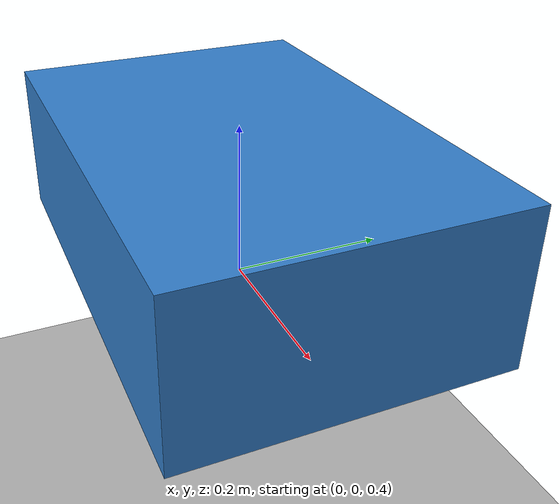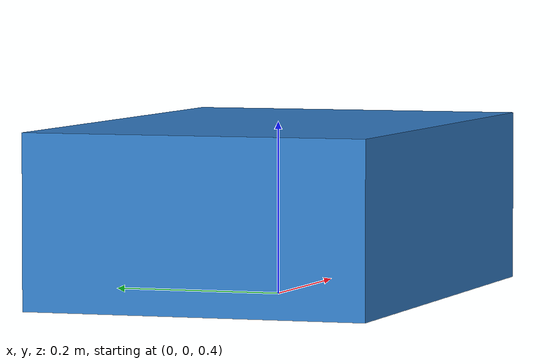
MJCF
<mujoco model="test_robot">

    <option timestep="0.002" gravity="0 0 -9.81"/>

    <worldbody>

        <!-- Floor -->
        <geom
            name="floor"
            type="plane"
            size="5 5 0.1"
            rgba="0.7 0.7 0.7 1"/>

        <!-- Light -->
        <light
            name="main_light"
            pos="0 0 3"
            directional="true"/>

        <!-- Robot -->
        <body name="robot" pos="0 0 0.5">

            <freejoint/>

            <geom
                name="body"
                type="box"
                size="0.3 0.2 0.1"
                mass="1"
                rgba="0.2 0.5 0.8 1"/>

        </body>

    </worldbody>

</mujoco>
